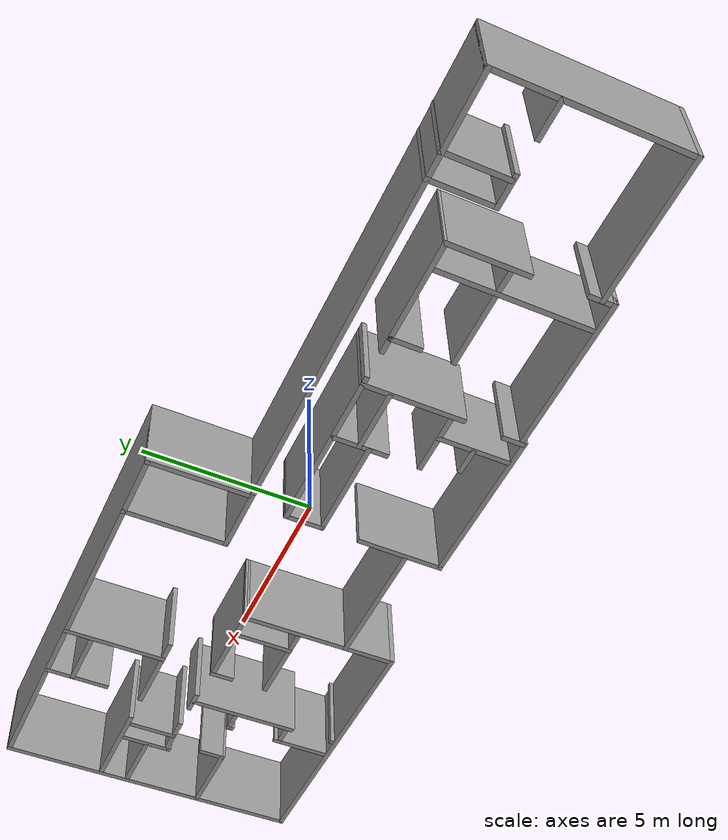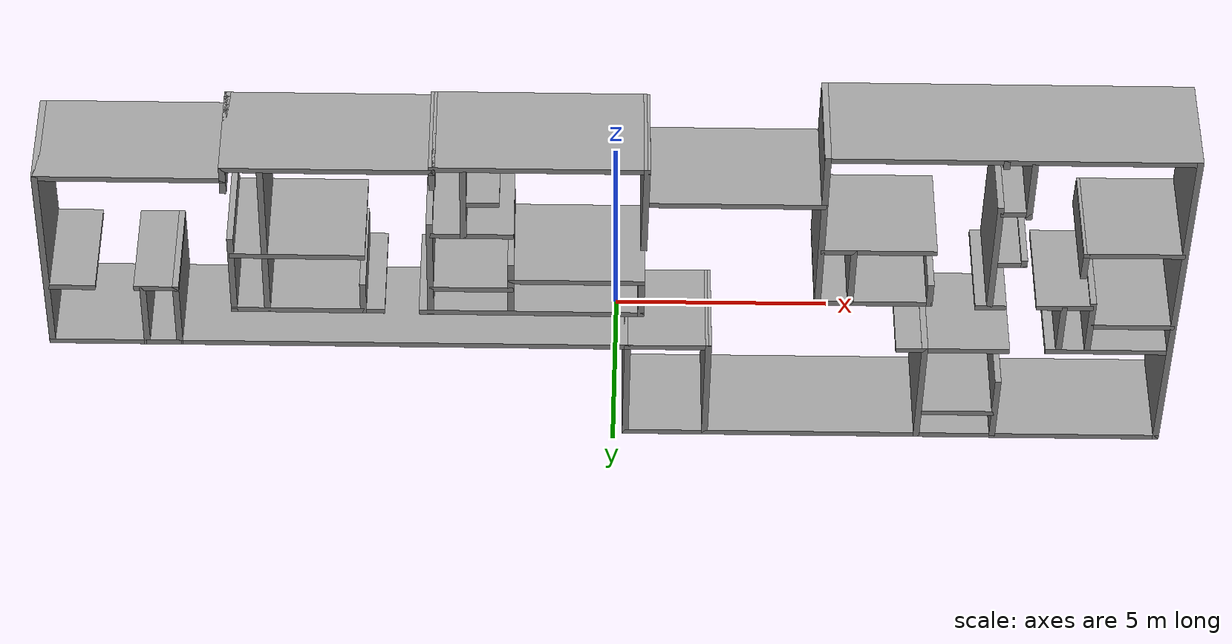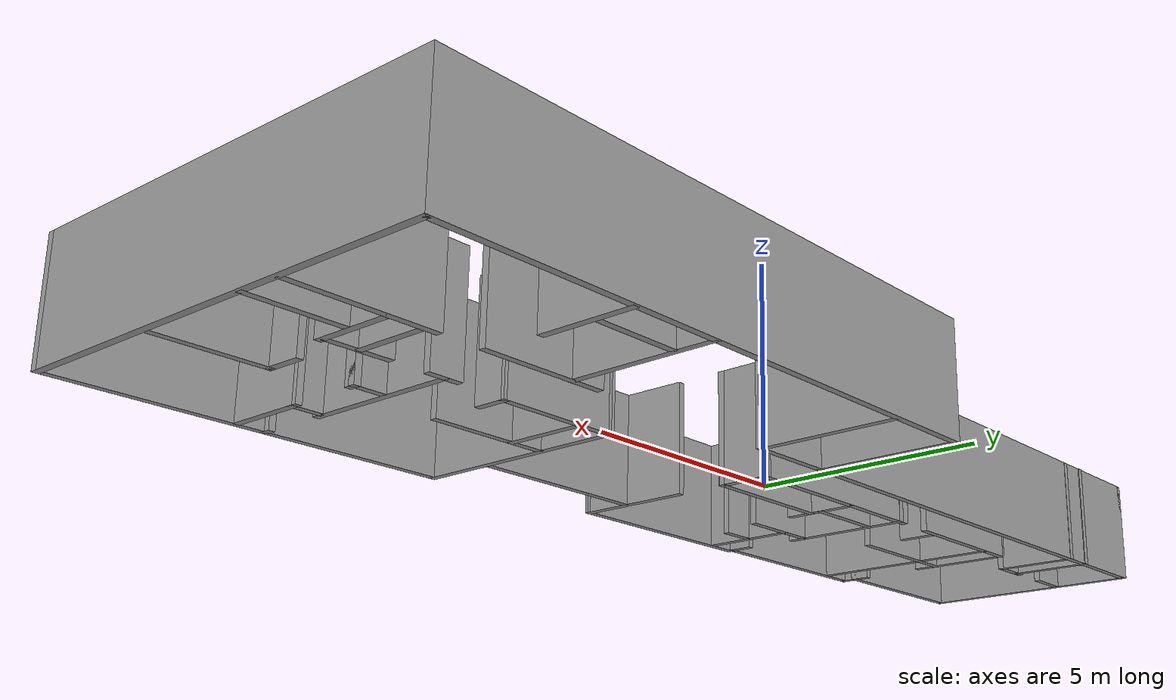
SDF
<?xml version='1.0'?>
<sdf version='1.7'>
  <model name='StandardApartment-2'>
    <pose>-0.075 -0.06 0 0 -0 0</pose>
    <link name='Wall_1'>
      <collision name='Wall_1_Collision'>
        <geometry>
          <box>
            <size>5.75 0.15 2.5</size>
          </box>
        </geometry>
        <pose>0 0 1.25 0 -0 0</pose>
      </collision>
      <visual name='Wall_1_Visual'>
        <pose>0 0 1.25 0 -0 0</pose>
        <geometry>
          <box>
            <size>5.75 0.15 2.5</size>
          </box>
        </geometry>
        <material>
          <script>
            <uri>file://media/materials/scripts/gazebo.material</uri>
            <name>Gazebo/Grey</name>
          </script>
          <ambient>1 1 1 1</ambient>
        </material>
        <meta>
          <layer>0</layer>
        </meta>
      </visual>
      <pose>-13.475 -1.1 0 0 -0 1.5708</pose>
    </link>
    <link name='Wall_102'>
      <collision name='Wall_102_Collision'>
        <geometry>
          <box>
            <size>3.5 0.15 2.5</size>
          </box>
        </geometry>
        <pose>0 0 1.25 0 -0 0</pose>
      </collision>
      <visual name='Wall_102_Visual'>
        <pose>0 0 1.25 0 -0 0</pose>
        <geometry>
          <box>
            <size>3.5 0.15 2.5</size>
          </box>
        </geometry>
        <material>
          <script>
            <uri>file://media/materials/scripts/gazebo.material</uri>
            <name>Gazebo/Grey</name>
          </script>
          <ambient>1 1 1 1</ambient>
        </material>
        <meta>
          <layer>0</layer>
        </meta>
      </visual>
      <pose>8.99118 -1.55956 0 0 -0 -1.5708</pose>
    </link>
    <link name='Wall_105'>
      <collision name='Wall_105_Collision'>
        <geometry>
          <box>
            <size>0.75 0.15 2.5</size>
          </box>
        </geometry>
        <pose>0 0 1.25 0 -0 0</pose>
      </collision>
      <visual name='Wall_105_Visual'>
        <pose>0 0 1.25 0 -0 0</pose>
        <geometry>
          <box>
            <size>0.75 0.15 2.5</size>
          </box>
        </geometry>
        <material>
          <script>
            <uri>file://media/materials/scripts/gazebo.material</uri>
            <name>Gazebo/Grey</name>
          </script>
          <ambient>1 1 1 1</ambient>
        </material>
        <meta>
          <layer>0</layer>
        </meta>
      </visual>
      <pose>9.36944 -3.08456 0 0 -0 0</pose>
    </link>
    <link name='Wall_106'>
      <collision name='Wall_106_Collision'>
        <geometry>
          <box>
            <size>1.75 0.15 2.5</size>
          </box>
        </geometry>
        <pose>0 0 1.25 0 -0 0</pose>
      </collision>
      <visual name='Wall_106_Visual'>
        <pose>0 0 1.25 0 -0 0</pose>
        <geometry>
          <box>
            <size>1.75 0.15 2.5</size>
          </box>
        </geometry>
        <material>
          <script>
            <uri>file://media/materials/scripts/gazebo.material</uri>
            <name>Gazebo/Grey</name>
          </script>
          <ambient>1 1 1 1</ambient>
        </material>
        <meta>
          <layer>0</layer>
        </meta>
      </visual>
      <pose>9.66944 -3.88456 0 0 -0 -1.5708</pose>
    </link>
    <link name='Wall_108'>
      <collision name='Wall_108_Collision'>
        <geometry>
          <box>
            <size>0.75 0.15 2.5</size>
          </box>
        </geometry>
        <pose>0 0 1.25 0 -0 0</pose>
      </collision>
      <visual name='Wall_108_Visual'>
        <pose>0 0 1.25 0 -0 0</pose>
        <geometry>
          <box>
            <size>0.75 0.15 2.5</size>
          </box>
        </geometry>
        <material>
          <script>
            <uri>file://media/materials/scripts/gazebo.material</uri>
            <name>Gazebo/Grey</name>
          </script>
          <ambient>1 1 1 1</ambient>
        </material>
        <meta>
          <layer>0</layer>
        </meta>
      </visual>
      <pose>9.39553 -1.34543 0 0 -0 0</pose>
    </link>
    <link name='Wall_109'>
      <collision name='Wall_109_Collision'>
        <geometry>
          <box>
            <size>0.25 0.15 2.5</size>
          </box>
        </geometry>
        <pose>0 0 1.25 0 -0 0</pose>
      </collision>
      <visual name='Wall_109_Visual'>
        <pose>0 0 1.25 0 -0 0</pose>
        <geometry>
          <box>
            <size>0.25 0.15 2.5</size>
          </box>
        </geometry>
        <material>
          <script>
            <uri>file://media/materials/scripts/gazebo.material</uri>
            <name>Gazebo/Grey</name>
          </script>
          <ambient>1 1 1 1</ambient>
        </material>
        <meta>
          <layer>0</layer>
        </meta>
      </visual>
      <pose>9.69553 -1.39542 0 0 -0 -1.5708</pose>
    </link>
    <link name='Wall_11'>
      <collision name='Wall_11_Collision'>
        <geometry>
          <box>
            <size>1.75 0.15 2.5</size>
          </box>
        </geometry>
        <pose>0 0 1.25 0 -0 0</pose>
      </collision>
      <visual name='Wall_11_Visual'>
        <pose>0 0 1.25 0 -0 0</pose>
        <geometry>
          <box>
            <size>1.75 0.15 2.5</size>
          </box>
        </geometry>
        <material>
          <script>
            <uri>file://media/materials/scripts/gazebo.material</uri>
            <name>Gazebo/Grey</name>
          </script>
          <ambient>1 1 1 1</ambient>
        </material>
        <meta>
          <layer>0</layer>
        </meta>
      </visual>
      <pose>11.475 0.85 0 0 -0 1.5708</pose>
    </link>
    <link name='Wall_111'>
      <collision name='Wall_111_Collision'>
        <geometry>
          <box>
            <size>0.25 0.15 2.5</size>
          </box>
        </geometry>
        <pose>0 0 1.25 0 -0 0</pose>
      </collision>
      <visual name='Wall_111_Visual'>
        <pose>0 0 1.25 0 -0 0</pose>
        <geometry>
          <box>
            <size>0.25 0.15 2.5</size>
          </box>
        </geometry>
        <material>
          <script>
            <uri>file://media/materials/scripts/gazebo.material</uri>
            <name>Gazebo/Grey</name>
          </script>
          <ambient>1 1 1 1</ambient>
        </material>
        <meta>
          <layer>0</layer>
        </meta>
      </visual>
      <pose>9.66944 -3.03456 0 0 -0 1.5708</pose>
    </link>
    <link name='Wall_113'>
      <collision name='Wall_113_Collision'>
        <geometry>
          <box>
            <size>2.40219 0.15 2.5</size>
          </box>
        </geometry>
        <pose>0 0 1.25 0 -0 0</pose>
      </collision>
      <visual name='Wall_113_Visual'>
        <pose>0 0 1.25 0 -0 0</pose>
        <geometry>
          <box>
            <size>2.40219 0.15 2.5</size>
          </box>
        </geometry>
        <material>
          <script>
            <uri>file://media/materials/scripts/gazebo.material</uri>
            <name>Gazebo/Grey</name>
          </script>
          <ambient>1 1 1 1</ambient>
        </material>
        <meta>
          <layer>0</layer>
        </meta>
      </visual>
      <pose>12.2738 -1.70629 0 0 -0 3.13773</pose>
    </link>
    <link name='Wall_114'>
      <collision name='Wall_114_Collision'>
        <geometry>
          <box>
            <size>0.863096 0.15 2.5</size>
          </box>
        </geometry>
        <pose>0 0 1.25 0 -0 0</pose>
      </collision>
      <visual name='Wall_114_Visual'>
        <pose>0 0 1.25 0 -0 0</pose>
        <geometry>
          <box>
            <size>0.863096 0.15 2.5</size>
          </box>
        </geometry>
        <material>
          <script>
            <uri>file://media/materials/scripts/gazebo.material</uri>
            <name>Gazebo/Grey</name>
          </script>
          <ambient>1 1 1 1</ambient>
        </material>
        <meta>
          <layer>0</layer>
        </meta>
      </visual>
      <pose>11.1434 -1.34543 0 0 -0 1.58299</pose>
    </link>
    <link name='Wall_116'>
      <collision name='Wall_116_Collision'>
        <geometry>
          <box>
            <size>4.23696 0.15 2.5</size>
          </box>
        </geometry>
        <pose>0 0 1.25 0 -0 0</pose>
      </collision>
      <visual name='Wall_116_Visual'>
        <pose>0 0 1.25 0 -0 0</pose>
        <geometry>
          <box>
            <size>4.23696 0.15 2.5</size>
          </box>
        </geometry>
        <material>
          <script>
            <uri>file://media/materials/scripts/gazebo.material</uri>
            <name>Gazebo/Grey</name>
          </script>
          <ambient>1 1 1 1</ambient>
        </material>
        <meta>
          <layer>0</layer>
        </meta>
      </visual>
      <pose>2.82596 -3.24977 0 0 -0 0</pose>
    </link>
    <link name='Wall_13'>
      <collision name='Wall_13_Collision'>
        <geometry>
          <box>
            <size>4.5 0.15 2.5</size>
          </box>
        </geometry>
        <pose>0 0 1.25 0 -0 0</pose>
      </collision>
      <visual name='Wall_13_Visual'>
        <pose>0 0 1.25 0 -0 0</pose>
        <geometry>
          <box>
            <size>4.5 0.15 2.5</size>
          </box>
        </geometry>
        <material>
          <script>
            <uri>file://media/materials/scripts/gazebo.material</uri>
            <name>Gazebo/Grey</name>
          </script>
          <ambient>1 1 1 1</ambient>
        </material>
        <meta>
          <layer>0</layer>
        </meta>
      </visual>
      <pose>-11.3 -3.9 0 0 -0 0</pose>
    </link>
    <link name='Wall_14'>
      <collision name='Wall_14_Collision'>
        <geometry>
          <box>
            <size>0.5 0.15 2.5</size>
          </box>
        </geometry>
        <pose>0 0 1.25 0 -0 0</pose>
      </collision>
      <visual name='Wall_14_Visual'>
        <pose>0 0 1.25 0 -0 0</pose>
        <geometry>
          <box>
            <size>0.5 0.15 2.5</size>
          </box>
        </geometry>
        <material>
          <script>
            <uri>file://media/materials/scripts/gazebo.material</uri>
            <name>Gazebo/Grey</name>
          </script>
          <ambient>1 1 1 1</ambient>
        </material>
        <meta>
          <layer>0</layer>
        </meta>
      </visual>
      <pose>-9.125 -4.075 0 0 -0 -1.5708</pose>
    </link>
    <link name='Wall_15'>
      <collision name='Wall_15_Collision'>
        <geometry>
          <box>
            <size>5 0.15 2.5</size>
          </box>
        </geometry>
        <pose>0 0 1.25 0 -0 0</pose>
      </collision>
      <visual name='Wall_15_Visual'>
        <pose>0 0 1.25 0 -0 0</pose>
        <geometry>
          <box>
            <size>5 0.15 2.5</size>
          </box>
        </geometry>
        <material>
          <script>
            <uri>file://media/materials/scripts/gazebo.material</uri>
            <name>Gazebo/Grey</name>
          </script>
          <ambient>1 1 1 1</ambient>
        </material>
        <meta>
          <layer>0</layer>
        </meta>
      </visual>
      <pose>-6.7 -4.25 0 0 -0 0</pose>
    </link>
    <link name='Wall_16'>
      <collision name='Wall_16_Collision'>
        <geometry>
          <box>
            <size>0.25 0.15 2.5</size>
          </box>
        </geometry>
        <pose>0 0 1.25 0 -0 0</pose>
      </collision>
      <visual name='Wall_16_Visual'>
        <pose>0 0 1.25 0 -0 0</pose>
        <geometry>
          <box>
            <size>0.25 0.15 2.5</size>
          </box>
        </geometry>
        <material>
          <script>
            <uri>file://media/materials/scripts/gazebo.material</uri>
            <name>Gazebo/Grey</name>
          </script>
          <ambient>1 1 1 1</ambient>
        </material>
        <meta>
          <layer>0</layer>
        </meta>
      </visual>
      <pose>-4.275 -4.3 0 0 -0 -1.5708</pose>
    </link>
    <link name='Wall_17'>
      <collision name='Wall_17_Collision'>
        <geometry>
          <box>
            <size>5.1405 0.15 2.5</size>
          </box>
        </geometry>
        <pose>0 0 1.25 0 -0 0</pose>
      </collision>
      <visual name='Wall_17_Visual'>
        <pose>0 0 1.25 0 -0 0</pose>
        <geometry>
          <box>
            <size>5.1405 0.15 2.5</size>
          </box>
        </geometry>
        <material>
          <script>
            <uri>file://media/materials/scripts/gazebo.material</uri>
            <name>Gazebo/Grey</name>
          </script>
          <ambient>1 1 1 1</ambient>
        </material>
        <meta>
          <layer>0</layer>
        </meta>
      </visual>
      <pose>-1.77975 -4.34675 0 0 -0 0.001302</pose>
    </link>
    <link name='Wall_18'>
      <collision name='Wall_18_Collision'>
        <geometry>
          <box>
            <size>2.71473 0.15 2.5</size>
          </box>
        </geometry>
        <pose>0 0 1.25 0 -0 0</pose>
      </collision>
      <visual name='Wall_18_Visual'>
        <pose>0 0 1.25 0 -0 0</pose>
        <geometry>
          <box>
            <size>2.71473 0.15 2.5</size>
          </box>
        </geometry>
        <material>
          <script>
            <uri>file://media/materials/scripts/gazebo.material</uri>
            <name>Gazebo/Grey</name>
          </script>
          <ambient>1 1 1 1</ambient>
        </material>
        <meta>
          <layer>0</layer>
        </meta>
      </visual>
      <pose>0.704 -3.06125 0 0 -0 1.57977</pose>
    </link>
    <link name='Wall_2'>
      <collision name='Wall_2_Collision'>
        <geometry>
          <box>
            <size>14 0.15 2.5</size>
          </box>
        </geometry>
        <pose>0 0 1.25 0 -0 0</pose>
      </collision>
      <visual name='Wall_2_Visual'>
        <pose>0 0 1.25 0 -0 0</pose>
        <geometry>
          <box>
            <size>14 0.15 2.5</size>
          </box>
        </geometry>
        <material>
          <script>
            <uri>file://media/materials/scripts/gazebo.material</uri>
            <name>Gazebo/Grey</name>
          </script>
          <ambient>1 1 1 1</ambient>
        </material>
        <meta>
          <layer>0</layer>
        </meta>
      </visual>
      <pose>-6.55 1.7 0 0 -0 0</pose>
    </link>
    <link name='Wall_20'>
      <collision name='Wall_20_Collision'>
        <geometry>
          <box>
            <size>5.38251 0.15 2.5</size>
          </box>
        </geometry>
        <pose>0 0 1.25 0 -0 0</pose>
      </collision>
      <visual name='Wall_20_Visual'>
        <pose>0 0 1.25 0 -0 0</pose>
        <geometry>
          <box>
            <size>5.38251 0.15 2.5</size>
          </box>
        </geometry>
        <material>
          <script>
            <uri>file://media/materials/scripts/gazebo.material</uri>
            <name>Gazebo/Grey</name>
          </script>
          <ambient>1 1 1 1</ambient>
        </material>
        <meta>
          <layer>0</layer>
        </meta>
      </visual>
      <pose>-1.94675 0.52675 0 0 -0 0.002198</pose>
    </link>
    <link name='Wall_23'>
      <collision name='Wall_23_Collision'>
        <geometry>
          <box>
            <size>3.66907 0.15 2.5</size>
          </box>
        </geometry>
        <pose>0 0 1.25 0 -0 0</pose>
      </collision>
      <visual name='Wall_23_Visual'>
        <pose>0 0 1.25 0 -0 0</pose>
        <geometry>
          <box>
            <size>3.66907 0.15 2.5</size>
          </box>
        </geometry>
        <material>
          <script>
            <uri>file://media/materials/scripts/gazebo.material</uri>
            <name>Gazebo/Grey</name>
          </script>
          <ambient>1 1 1 1</ambient>
        </material>
        <meta>
          <layer>0</layer>
        </meta>
      </visual>
      <pose>-7.2885 0.50375 0 0 -0 -3.13833</pose>
    </link>
    <link name='Wall_24'>
      <collision name='Wall_24_Collision'>
        <geometry>
          <box>
            <size>2.5 0.15 2.5</size>
          </box>
        </geometry>
        <pose>0 0 1.25 0 -0 0</pose>
      </collision>
      <visual name='Wall_24_Visual'>
        <pose>0 0 1.25 0 -0 0</pose>
        <geometry>
          <box>
            <size>2.5 0.15 2.5</size>
          </box>
        </geometry>
        <material>
          <script>
            <uri>file://media/materials/scripts/gazebo.material</uri>
            <name>Gazebo/Grey</name>
          </script>
          <ambient>1 1 1 1</ambient>
        </material>
        <meta>
          <layer>0</layer>
        </meta>
      </visual>
      <pose>-9.048 -0.677 0 0 -0 -1.5708</pose>
    </link>
    <link name='Wall_26'>
      <collision name='Wall_26_Collision'>
        <geometry>
          <box>
            <size>0.5 0.15 2.5</size>
          </box>
        </geometry>
        <pose>0 0 1.25 0 -0 0</pose>
      </collision>
      <visual name='Wall_26_Visual'>
        <pose>0 0 1.25 0 -0 0</pose>
        <geometry>
          <box>
            <size>0.5 0.15 2.5</size>
          </box>
        </geometry>
        <material>
          <script>
            <uri>file://media/materials/scripts/gazebo.material</uri>
            <name>Gazebo/Grey</name>
          </script>
          <ambient>1 1 1 1</ambient>
        </material>
        <meta>
          <layer>0</layer>
        </meta>
      </visual>
      <pose>-9.125 -3.725 0 0 -0 1.5708</pose>
    </link>
    <link name='Wall_28'>
      <collision name='Wall_28_Collision'>
        <geometry>
          <box>
            <size>1.20806 0.15 2.5</size>
          </box>
        </geometry>
        <pose>0 0 1.25 0 -0 0</pose>
      </collision>
      <visual name='Wall_28_Visual'>
        <pose>0 0 1.25 0 -0 0</pose>
        <geometry>
          <box>
            <size>1.20806 0.15 2.5</size>
          </box>
        </geometry>
        <material>
          <script>
            <uri>file://media/materials/scripts/gazebo.material</uri>
            <name>Gazebo/Grey</name>
          </script>
          <ambient>1 1 1 1</ambient>
        </material>
        <meta>
          <layer>0</layer>
        </meta>
      </visual>
      <pose>-12.9235 -0.20925 0 0 -0 0.010869</pose>
    </link>
    <link name='Wall_30'>
      <collision name='Wall_30_Collision'>
        <geometry>
          <box>
            <size>2.04753 0.15 2.5</size>
          </box>
        </geometry>
        <pose>0 0 1.25 0 -0 0</pose>
      </collision>
      <visual name='Wall_30_Visual'>
        <pose>0 0 1.25 0 -0 0</pose>
        <geometry>
          <box>
            <size>2.04753 0.15 2.5</size>
          </box>
        </geometry>
        <material>
          <script>
            <uri>file://media/materials/scripts/gazebo.material</uri>
            <name>Gazebo/Grey</name>
          </script>
          <ambient>1 1 1 1</ambient>
        </material>
        <meta>
          <layer>0</layer>
        </meta>
      </visual>
      <pose>-10.4165 0.75675 0 0 -0 -1.5708</pose>
    </link>
    <link name='Wall_31'>
      <collision name='Wall_31_Collision'>
        <geometry>
          <box>
            <size>1.07 0.15 2.5</size>
          </box>
        </geometry>
        <pose>0 0 1.25 0 -0 0</pose>
      </collision>
      <visual name='Wall_31_Visual'>
        <pose>0 0 1.25 0 -0 0</pose>
        <geometry>
          <box>
            <size>1.07 0.15 2.5</size>
          </box>
        </geometry>
        <material>
          <script>
            <uri>file://media/materials/scripts/gazebo.material</uri>
            <name>Gazebo/Grey</name>
          </script>
          <ambient>1 1 1 1</ambient>
        </material>
        <meta>
          <layer>0</layer>
        </meta>
      </visual>
      <pose>-10.8765 -0.192 0 0 -0 3.14159</pose>
    </link>
    <link name='Wall_33'>
      <collision name='Wall_33_Collision'>
        <geometry>
          <box>
            <size>2.0015 0.15 2.5</size>
          </box>
        </geometry>
        <pose>0 0 1.25 0 -0 0</pose>
      </collision>
      <visual name='Wall_33_Visual'>
        <pose>0 0 1.25 0 -0 0</pose>
        <geometry>
          <box>
            <size>2.0015 0.15 2.5</size>
          </box>
        </geometry>
        <material>
          <script>
            <uri>file://media/materials/scripts/gazebo.material</uri>
            <name>Gazebo/Grey</name>
          </script>
          <ambient>1 1 1 1</ambient>
        </material>
        <meta>
          <layer>0</layer>
        </meta>
      </visual>
      <pose>-11.1985 0.79125 0 0 -0 -1.5708</pose>
    </link>
    <link name='Wall_35'>
      <collision name='Wall_35_Collision'>
        <geometry>
          <box>
            <size>3.19759 0.15 2.5</size>
          </box>
        </geometry>
        <pose>0 0 1.25 0 -0 0</pose>
      </collision>
      <visual name='Wall_35_Visual'>
        <pose>0 0 1.25 0 -0 0</pose>
        <geometry>
          <box>
            <size>3.19759 0.15 2.5</size>
          </box>
        </geometry>
        <material>
          <script>
            <uri>file://media/materials/scripts/gazebo.material</uri>
            <name>Gazebo/Grey</name>
          </script>
          <ambient>1 1 1 1</ambient>
        </material>
        <meta>
          <layer>0</layer>
        </meta>
      </visual>
      <pose>-7.48975 -1.35925 0 0 -0 0.003774</pose>
    </link>
    <link name='Wall_39'>
      <collision name='Wall_39_Collision'>
        <geometry>
          <box>
            <size>1 0.15 2.5</size>
          </box>
        </geometry>
        <pose>0 0 1.25 0 -0 0</pose>
      </collision>
      <visual name='Wall_39_Visual'>
        <pose>0 0 1.25 0 -0 0</pose>
        <geometry>
          <box>
            <size>1 0.15 2.5</size>
          </box>
        </geometry>
        <material>
          <script>
            <uri>file://media/materials/scripts/gazebo.material</uri>
            <name>Gazebo/Grey</name>
          </script>
          <ambient>1 1 1 1</ambient>
        </material>
        <meta>
          <layer>0</layer>
        </meta>
      </visual>
      <pose>-5.966 0.073 0 0 -0 -1.5708</pose>
    </link>
    <link name='Wall_4'>
      <collision name='Wall_4_Collision'>
        <geometry>
          <box>
            <size>3.25 0.15 2.5</size>
          </box>
        </geometry>
        <pose>0 0 1.25 0 -0 0</pose>
      </collision>
      <visual name='Wall_4_Visual'>
        <pose>0 0 1.25 0 -0 0</pose>
        <geometry>
          <box>
            <size>3.25 0.15 2.5</size>
          </box>
        </geometry>
        <material>
          <script>
            <uri>file://media/materials/scripts/gazebo.material</uri>
            <name>Gazebo/Grey</name>
          </script>
          <ambient>1 1 1 1</ambient>
        </material>
        <meta>
          <layer>0</layer>
        </meta>
      </visual>
      <pose>0.375 3.25 0 0 -0 1.5708</pose>
    </link>
    <link name='Wall_41'>
      <collision name='Wall_41_Collision'>
        <geometry>
          <box>
            <size>4.75 0.15 2.5</size>
          </box>
        </geometry>
        <pose>0 0 1.25 0 -0 0</pose>
      </collision>
      <visual name='Wall_41_Visual'>
        <pose>0 0 1.25 0 -0 0</pose>
        <geometry>
          <box>
            <size>4.75 0.15 2.5</size>
          </box>
        </geometry>
        <material>
          <script>
            <uri>file://media/materials/scripts/gazebo.material</uri>
            <name>Gazebo/Grey</name>
          </script>
          <ambient>1 1 1 1</ambient>
        </material>
        <meta>
          <layer>0</layer>
        </meta>
      </visual>
      <pose>-8.2545 -1.8135 0 0 -0 -1.5708</pose>
    </link>
    <link name='Wall_46'>
      <collision name='Wall_46_Collision'>
        <geometry>
          <box>
            <size>3.12393 0.15 2.5</size>
          </box>
        </geometry>
        <pose>0 0 1.25 0 -0 0</pose>
      </collision>
      <visual name='Wall_46_Visual'>
        <pose>0 0 1.25 0 -0 0</pose>
        <geometry>
          <box>
            <size>3.12393 0.15 2.5</size>
          </box>
        </geometry>
        <material>
          <script>
            <uri>file://media/materials/scripts/gazebo.material</uri>
            <name>Gazebo/Grey</name>
          </script>
          <ambient>1 1 1 1</ambient>
        </material>
        <meta>
          <layer>0</layer>
        </meta>
      </visual>
      <pose>-4.35664 -0.962817 0 0 -0 -1.5708</pose>
    </link>
    <link name='Wall_48'>
      <collision name='Wall_48_Collision'>
        <geometry>
          <box>
            <size>0.75 0.15 2.5</size>
          </box>
        </geometry>
        <pose>0 0 1.25 0 -0 0</pose>
      </collision>
      <visual name='Wall_48_Visual'>
        <pose>0 0 1.25 0 -0 0</pose>
        <geometry>
          <box>
            <size>0.75 0.15 2.5</size>
          </box>
        </geometry>
        <material>
          <script>
            <uri>file://media/materials/scripts/gazebo.material</uri>
            <name>Gazebo/Grey</name>
          </script>
          <ambient>1 1 1 1</ambient>
        </material>
        <meta>
          <layer>0</layer>
        </meta>
      </visual>
      <pose>-4.275 -4.05 0 0 -0 1.5708</pose>
    </link>
    <link name='Wall_5'>
      <collision name='Wall_5_Collision'>
        <geometry>
          <box>
            <size>13.25 0.15 2.5</size>
          </box>
        </geometry>
        <pose>0 0 1.25 0 -0 0</pose>
      </collision>
      <visual name='Wall_5_Visual'>
        <pose>0 0 1.25 0 -0 0</pose>
        <geometry>
          <box>
            <size>13.25 0.15 2.5</size>
          </box>
        </geometry>
        <material>
          <script>
            <uri>file://media/materials/scripts/gazebo.material</uri>
            <name>Gazebo/Grey</name>
          </script>
          <ambient>1 1 1 1</ambient>
        </material>
        <meta>
          <layer>0</layer>
        </meta>
      </visual>
      <pose>6.925 4.8 0 0 -0 0</pose>
    </link>
    <link name='Wall_50'>
      <collision name='Wall_50_Collision'>
        <geometry>
          <box>
            <size>2 0.15 2.5</size>
          </box>
        </geometry>
        <pose>0 0 1.25 0 -0 0</pose>
      </collision>
      <visual name='Wall_50_Visual'>
        <pose>0 0 1.25 0 -0 0</pose>
        <geometry>
          <box>
            <size>2 0.15 2.5</size>
          </box>
        </geometry>
        <material>
          <script>
            <uri>file://media/materials/scripts/gazebo.material</uri>
            <name>Gazebo/Grey</name>
          </script>
          <ambient>1 1 1 1</ambient>
        </material>
        <meta>
          <layer>0</layer>
        </meta>
      </visual>
      <pose>-3.37078 -2.12803 0 0 -0 0</pose>
    </link>
    <link name='Wall_52'>
      <collision name='Wall_52_Collision'>
        <geometry>
          <box>
            <size>2.25 0.15 2.5</size>
          </box>
        </geometry>
        <pose>0 0 1.25 0 -0 0</pose>
      </collision>
      <visual name='Wall_52_Visual'>
        <pose>0 0 1.25 0 -0 0</pose>
        <geometry>
          <box>
            <size>2.25 0.15 2.5</size>
          </box>
        </geometry>
        <material>
          <script>
            <uri>file://media/materials/scripts/gazebo.material</uri>
            <name>Gazebo/Grey</name>
          </script>
          <ambient>1 1 1 1</ambient>
        </material>
        <meta>
          <layer>0</layer>
        </meta>
      </visual>
      <pose>-3.55664 -3.17803 0 0 -0 -1.5708</pose>
    </link>
    <link name='Wall_54'>
      <collision name='Wall_54_Collision'>
        <geometry>
          <box>
            <size>1.75 0.15 2.5</size>
          </box>
        </geometry>
        <pose>0 0 1.25 0 -0 0</pose>
      </collision>
      <visual name='Wall_54_Visual'>
        <pose>0 0 1.25 0 -0 0</pose>
        <geometry>
          <box>
            <size>1.75 0.15 2.5</size>
          </box>
        </geometry>
        <material>
          <script>
            <uri>file://media/materials/scripts/gazebo.material</uri>
            <name>Gazebo/Grey</name>
          </script>
          <ambient>1 1 1 1</ambient>
        </material>
        <meta>
          <layer>0</layer>
        </meta>
      </visual>
      <pose>-2.4436 -0.284556 0 0 -0 -1.5708</pose>
    </link>
    <link name='Wall_56'>
      <collision name='Wall_56_Collision'>
        <geometry>
          <box>
            <size>2 0.15 2.5</size>
          </box>
        </geometry>
        <pose>0 0 1.25 0 -0 0</pose>
      </collision>
      <visual name='Wall_56_Visual'>
        <pose>0 0 1.25 0 -0 0</pose>
        <geometry>
          <box>
            <size>2 0.15 2.5</size>
          </box>
        </geometry>
        <material>
          <script>
            <uri>file://media/materials/scripts/gazebo.material</uri>
            <name>Gazebo/Grey</name>
          </script>
          <ambient>1 1 1 1</ambient>
        </material>
        <meta>
          <layer>0</layer>
        </meta>
      </visual>
      <pose>-3.37078 -0.284556 0 0 -0 0</pose>
    </link>
    <link name='Wall_58'>
      <collision name='Wall_58_Collision'>
        <geometry>
          <box>
            <size>0.863043 0.15 2.5</size>
          </box>
        </geometry>
        <pose>0 0 1.25 0 -0 0</pose>
      </collision>
      <visual name='Wall_58_Visual'>
        <pose>0 0 1.25 0 -0 0</pose>
        <geometry>
          <box>
            <size>0.863043 0.15 2.5</size>
          </box>
        </geometry>
        <material>
          <script>
            <uri>file://media/materials/scripts/gazebo.material</uri>
            <name>Gazebo/Grey</name>
          </script>
          <ambient>1 1 1 1</ambient>
        </material>
        <meta>
          <layer>0</layer>
        </meta>
      </visual>
      <pose>-3.13925 -3.1889 0 0 -0 0</pose>
    </link>
    <link name='Wall_61'>
      <collision name='Wall_61_Collision'>
        <geometry>
          <box>
            <size>1.25 0.15 2.5</size>
          </box>
        </geometry>
        <pose>0 0 1.25 0 -0 0</pose>
      </collision>
      <visual name='Wall_61_Visual'>
        <pose>0 0 1.25 0 -0 0</pose>
        <geometry>
          <box>
            <size>1.25 0.15 2.5</size>
          </box>
        </geometry>
        <material>
          <script>
            <uri>file://media/materials/scripts/gazebo.material</uri>
            <name>Gazebo/Grey</name>
          </script>
          <ambient>1 1 1 1</ambient>
        </material>
        <meta>
          <layer>0</layer>
        </meta>
      </visual>
      <pose>0.6695 -0.0175 0 0 -0 -1.5708</pose>
    </link>
    <link name='Wall_62'>
      <collision name='Wall_62_Collision'>
        <geometry>
          <box>
            <size>3.25 0.15 2.5</size>
          </box>
        </geometry>
        <pose>0 0 1.25 0 -0 0</pose>
      </collision>
      <visual name='Wall_62_Visual'>
        <pose>0 0 1.25 0 -0 0</pose>
        <geometry>
          <box>
            <size>3.25 0.15 2.5</size>
          </box>
        </geometry>
        <material>
          <script>
            <uri>file://media/materials/scripts/gazebo.material</uri>
            <name>Gazebo/Grey</name>
          </script>
          <ambient>1 1 1 1</ambient>
        </material>
        <meta>
          <layer>0</layer>
        </meta>
      </visual>
      <pose>-0.8805 -0.5675 0 0 -0 3.14159</pose>
    </link>
    <link name='Wall_67'>
      <collision name='Wall_67_Collision'>
        <geometry>
          <box>
            <size>3.25 0.15 2.5</size>
          </box>
        </geometry>
        <pose>0 0 1.25 0 -0 0</pose>
      </collision>
      <visual name='Wall_67_Visual'>
        <pose>0 0 1.25 0 -0 0</pose>
        <geometry>
          <box>
            <size>3.25 0.15 2.5</size>
          </box>
        </geometry>
        <material>
          <script>
            <uri>file://media/materials/scripts/gazebo.material</uri>
            <name>Gazebo/Grey</name>
          </script>
          <ambient>1 1 1 1</ambient>
        </material>
        <meta>
          <layer>0</layer>
        </meta>
      </visual>
      <pose>2.33031 3.2437 0 0 -0 -1.5708</pose>
    </link>
    <link name='Wall_68'>
      <collision name='Wall_68_Collision'>
        <geometry>
          <box>
            <size>2.10532 0.15 2.5</size>
          </box>
        </geometry>
        <pose>0 0 1.25 0 -0 0</pose>
      </collision>
      <visual name='Wall_68_Visual'>
        <pose>0 0 1.25 0 -0 0</pose>
        <geometry>
          <box>
            <size>2.10532 0.15 2.5</size>
          </box>
        </geometry>
        <material>
          <script>
            <uri>file://media/materials/scripts/gazebo.material</uri>
            <name>Gazebo/Grey</name>
          </script>
          <ambient>1 1 1 1</ambient>
        </material>
        <meta>
          <layer>0</layer>
        </meta>
      </visual>
      <pose>1.35266 1.69685 0 0 -0 3.13837</pose>
    </link>
    <link name='Wall_7'>
      <collision name='Wall_7_Collision'>
        <geometry>
          <box>
            <size>9.75 0.15 2.5</size>
          </box>
        </geometry>
        <pose>0 0 1.25 0 -0 0</pose>
      </collision>
      <visual name='Wall_7_Visual'>
        <pose>0 0 1.25 0 -0 0</pose>
        <geometry>
          <box>
            <size>9.75 0.15 2.5</size>
          </box>
        </geometry>
        <material>
          <script>
            <uri>file://media/materials/scripts/gazebo.material</uri>
            <name>Gazebo/Grey</name>
          </script>
          <ambient>1 1 1 1</ambient>
        </material>
        <meta>
          <layer>0</layer>
        </meta>
      </visual>
      <pose>13.475 -0 0 0 -0 -1.5708</pose>
    </link>
    <link name='Wall_70'>
      <collision name='Wall_70_Collision'>
        <geometry>
          <box>
            <size>3.25 0.15 2.5</size>
          </box>
        </geometry>
        <pose>0 0 1.25 0 -0 0</pose>
      </collision>
      <visual name='Wall_70_Visual'>
        <pose>0 0 1.25 0 -0 0</pose>
        <geometry>
          <box>
            <size>3.25 0.15 2.5</size>
          </box>
        </geometry>
        <material>
          <script>
            <uri>file://media/materials/scripts/gazebo.material</uri>
            <name>Gazebo/Grey</name>
          </script>
          <ambient>1 1 1 1</ambient>
        </material>
        <meta>
          <layer>0</layer>
        </meta>
      </visual>
      <pose>7.5564 3.2437 0 0 -0 -1.5708</pose>
    </link>
    <link name='Wall_72'>
      <collision name='Wall_72_Collision'>
        <geometry>
          <box>
            <size>2.75 0.15 2.5</size>
          </box>
        </geometry>
        <pose>0 0 1.25 0 -0 0</pose>
      </collision>
      <visual name='Wall_72_Visual'>
        <pose>0 0 1.25 0 -0 0</pose>
        <geometry>
          <box>
            <size>2.75 0.15 2.5</size>
          </box>
        </geometry>
        <material>
          <script>
            <uri>file://media/materials/scripts/gazebo.material</uri>
            <name>Gazebo/Grey</name>
          </script>
          <ambient>1 1 1 1</ambient>
        </material>
        <meta>
          <layer>0</layer>
        </meta>
      </visual>
      <pose>8.23031 1.69805 0 0 -0 0</pose>
    </link>
    <link name='Wall_74'>
      <collision name='Wall_74_Collision'>
        <geometry>
          <box>
            <size>2 0.15 2.5</size>
          </box>
        </geometry>
        <pose>0 0 1.25 0 -0 0</pose>
      </collision>
      <visual name='Wall_74_Visual'>
        <pose>0 0 1.25 0 -0 0</pose>
        <geometry>
          <box>
            <size>2 0.15 2.5</size>
          </box>
        </geometry>
        <material>
          <script>
            <uri>file://media/materials/scripts/gazebo.material</uri>
            <name>Gazebo/Grey</name>
          </script>
          <ambient>1 1 1 1</ambient>
        </material>
        <meta>
          <layer>0</layer>
        </meta>
      </visual>
      <pose>9.42596 3.81653 0 0 -0 -1.5708</pose>
    </link>
    <link name='Wall_76'>
      <collision name='Wall_76_Collision'>
        <geometry>
          <box>
            <size>1.88046 0.15 2.5</size>
          </box>
        </geometry>
        <pose>0 0 1.25 0 -0 0</pose>
      </collision>
      <visual name='Wall_76_Visual'>
        <pose>0 0 1.25 0 -0 0</pose>
        <geometry>
          <box>
            <size>1.88046 0.15 2.5</size>
          </box>
        </geometry>
        <material>
          <script>
            <uri>file://media/materials/scripts/gazebo.material</uri>
            <name>Gazebo/Grey</name>
          </script>
          <ambient>1 1 1 1</ambient>
        </material>
        <meta>
          <layer>0</layer>
        </meta>
      </visual>
      <pose>8.51727 3.97631 0 0 -0 0</pose>
    </link>
    <link name='Wall_78'>
      <collision name='Wall_78_Collision'>
        <geometry>
          <box>
            <size>3 0.15 2.5</size>
          </box>
        </geometry>
        <pose>0 0 1.25 0 -0 0</pose>
      </collision>
      <visual name='Wall_78_Visual'>
        <pose>0 0 1.25 0 -0 0</pose>
        <geometry>
          <box>
            <size>3 0.15 2.5</size>
          </box>
        </geometry>
        <material>
          <script>
            <uri>file://media/materials/scripts/gazebo.material</uri>
            <name>Gazebo/Grey</name>
          </script>
          <ambient>1 1 1 1</ambient>
        </material>
        <meta>
          <layer>0</layer>
        </meta>
      </visual>
      <pose>11.964 1.68066 0 0 -0 0</pose>
    </link>
    <link name='Wall_8'>
      <collision name='Wall_8_Collision'>
        <geometry>
          <box>
            <size>8.75 0.15 2.5</size>
          </box>
        </geometry>
        <pose>0 0 1.25 0 -0 0</pose>
      </collision>
      <visual name='Wall_8_Visual'>
        <pose>0 0 1.25 0 -0 0</pose>
        <geometry>
          <box>
            <size>8.75 0.15 2.5</size>
          </box>
        </geometry>
        <material>
          <script>
            <uri>file://media/materials/scripts/gazebo.material</uri>
            <name>Gazebo/Grey</name>
          </script>
          <ambient>1 1 1 1</ambient>
        </material>
        <meta>
          <layer>0</layer>
        </meta>
      </visual>
      <pose>9.175 -4.8 0 0 -0 3.14159</pose>
    </link>
    <link name='Wall_80'>
      <collision name='Wall_80_Collision'>
        <geometry>
          <box>
            <size>2 0.15 2.5</size>
          </box>
        </geometry>
        <pose>0 0 1.25 0 -0 0</pose>
      </collision>
      <visual name='Wall_80_Visual'>
        <pose>0 0 1.25 0 -0 0</pose>
        <geometry>
          <box>
            <size>2 0.15 2.5</size>
          </box>
        </geometry>
        <material>
          <script>
            <uri>file://media/materials/scripts/gazebo.material</uri>
            <name>Gazebo/Grey</name>
          </script>
          <ambient>1 1 1 1</ambient>
        </material>
        <meta>
          <layer>0</layer>
        </meta>
      </visual>
      <pose>12.4901 0.785009 0 0 -0 0</pose>
    </link>
    <link name='Wall_82'>
      <collision name='Wall_82_Collision'>
        <geometry>
          <box>
            <size>2.82271 0.15 2.5</size>
          </box>
        </geometry>
        <pose>0 0 1.25 0 -0 0</pose>
      </collision>
      <visual name='Wall_82_Visual'>
        <pose>0 0 1.25 0 -0 0</pose>
        <geometry>
          <box>
            <size>2.82271 0.15 2.5</size>
          </box>
        </geometry>
        <material>
          <script>
            <uri>file://media/materials/scripts/gazebo.material</uri>
            <name>Gazebo/Grey</name>
          </script>
          <ambient>1 1 1 1</ambient>
        </material>
        <meta>
          <layer>0</layer>
        </meta>
      </visual>
      <pose>6.21135 0.047939 0 0 -0 -0.001542</pose>
    </link>
    <link name='Wall_83'>
      <collision name='Wall_83_Collision'>
        <geometry>
          <box>
            <size>0.75 0.15 2.5</size>
          </box>
        </geometry>
        <pose>0 0 1.25 0 -0 0</pose>
      </collision>
      <visual name='Wall_83_Visual'>
        <pose>0 0 1.25 0 -0 0</pose>
        <geometry>
          <box>
            <size>0.75 0.15 2.5</size>
          </box>
        </geometry>
        <material>
          <script>
            <uri>file://media/materials/scripts/gazebo.material</uri>
            <name>Gazebo/Grey</name>
          </script>
          <ambient>1 1 1 1</ambient>
        </material>
        <meta>
          <layer>0</layer>
        </meta>
      </visual>
      <pose>7.5477 -0.254121 0 0 -0 -1.5708</pose>
    </link>
    <link name='Wall_85'>
      <collision name='Wall_85_Collision'>
        <geometry>
          <box>
            <size>2.75 0.15 2.5</size>
          </box>
        </geometry>
        <pose>0 0 1.25 0 -0 0</pose>
      </collision>
      <visual name='Wall_85_Visual'>
        <pose>0 0 1.25 0 -0 0</pose>
        <geometry>
          <box>
            <size>2.75 0.15 2.5</size>
          </box>
        </geometry>
        <material>
          <script>
            <uri>file://media/materials/scripts/gazebo.material</uri>
            <name>Gazebo/Grey</name>
          </script>
          <ambient>1 1 1 1</ambient>
        </material>
        <meta>
          <layer>0</layer>
        </meta>
      </visual>
      <pose>6.23901 -1.71934 0 0 -0 0</pose>
    </link>
    <link name='Wall_87'>
      <collision name='Wall_87_Collision'>
        <geometry>
          <box>
            <size>1.90652 0.15 2.5</size>
          </box>
        </geometry>
        <pose>0 0 1.25 0 -0 0</pose>
      </collision>
      <visual name='Wall_87_Visual'>
        <pose>0 0 1.25 0 -0 0</pose>
        <geometry>
          <box>
            <size>1.90652 0.15 2.5</size>
          </box>
        </geometry>
        <material>
          <script>
            <uri>file://media/materials/scripts/gazebo.material</uri>
            <name>Gazebo/Grey</name>
          </script>
          <ambient>1 1 1 1</ambient>
        </material>
        <meta>
          <layer>0</layer>
        </meta>
      </visual>
      <pose>5.65205 -0.832382 0 0 -0 -1.5708</pose>
    </link>
    <link name='Wall_89'>
      <collision name='Wall_89_Collision'>
        <geometry>
          <box>
            <size>0.15 0.15 2.5</size>
          </box>
        </geometry>
        <pose>0 0 1.25 0 -0 0</pose>
      </collision>
      <visual name='Wall_89_Visual'>
        <pose>0 0 1.25 0 -0 0</pose>
        <geometry>
          <box>
            <size>0.15 0.15 2.5</size>
          </box>
        </geometry>
        <material>
          <script>
            <uri>file://media/materials/scripts/gazebo.material</uri>
            <name>Gazebo/Grey</name>
          </script>
          <ambient>1 1 1 1</ambient>
        </material>
        <meta>
          <layer>0</layer>
        </meta>
      </visual>
      <pose>5.65205 0.045879 0 0 -0 0</pose>
    </link>
    <link name='Wall_9'>
      <collision name='Wall_9_Collision'>
        <geometry>
          <box>
            <size>5 0.15 2.5</size>
          </box>
        </geometry>
        <pose>0 0 1.25 0 -0 0</pose>
      </collision>
      <visual name='Wall_9_Visual'>
        <pose>0 0 1.25 0 -0 0</pose>
        <geometry>
          <box>
            <size>5 0.15 2.5</size>
          </box>
        </geometry>
        <material>
          <script>
            <uri>file://media/materials/scripts/gazebo.material</uri>
            <name>Gazebo/Grey</name>
          </script>
          <ambient>1 1 1 1</ambient>
        </material>
        <meta>
          <layer>0</layer>
        </meta>
      </visual>
      <pose>4.875 -2.375 0 0 -0 1.5708</pose>
    </link>
    <link name='Wall_93'>
      <collision name='Wall_93_Collision'>
        <geometry>
          <box>
            <size>0.25 0.15 2.5</size>
          </box>
        </geometry>
        <pose>0 0 1.25 0 -0 0</pose>
      </collision>
      <visual name='Wall_93_Visual'>
        <pose>0 0 1.25 0 -0 0</pose>
        <geometry>
          <box>
            <size>0.25 0.15 2.5</size>
          </box>
        </geometry>
        <material>
          <script>
            <uri>file://media/materials/scripts/gazebo.material</uri>
            <name>Gazebo/Grey</name>
          </script>
          <ambient>1 1 1 1</ambient>
        </material>
        <meta>
          <layer>0</layer>
        </meta>
      </visual>
      <pose>9.00857 -4.72151 0 0 -0 1.5708</pose>
    </link>
    <link name='Wall_95'>
      <collision name='Wall_95_Collision'>
        <geometry>
          <box>
            <size>0.75 0.15 2.5</size>
          </box>
        </geometry>
        <pose>0 0 1.25 0 -0 0</pose>
      </collision>
      <visual name='Wall_95_Visual'>
        <pose>0 0 1.25 0 -0 0</pose>
        <geometry>
          <box>
            <size>0.75 0.15 2.5</size>
          </box>
        </geometry>
        <material>
          <script>
            <uri>file://media/materials/scripts/gazebo.material</uri>
            <name>Gazebo/Grey</name>
          </script>
          <ambient>1 1 1 1</ambient>
        </material>
        <meta>
          <layer>0</layer>
        </meta>
      </visual>
      <pose>9.02162 0.141531 0 0 -0 0</pose>
    </link>
    <link name='Wall_97'>
      <collision name='Wall_97_Collision'>
        <geometry>
          <box>
            <size>1.36742 0.15 2.5</size>
          </box>
        </geometry>
        <pose>0 0 1.25 0 -0 0</pose>
      </collision>
      <visual name='Wall_97_Visual'>
        <pose>0 0 1.25 0 -0 0</pose>
        <geometry>
          <box>
            <size>1.36742 0.15 2.5</size>
          </box>
        </geometry>
        <material>
          <script>
            <uri>file://media/materials/scripts/gazebo.material</uri>
            <name>Gazebo/Grey</name>
          </script>
          <ambient>1 1 1 1</ambient>
        </material>
        <meta>
          <layer>0</layer>
        </meta>
      </visual>
      <pose>10.7999 0.128488 0 0 -0 -0.007143</pose>
    </link>
    <link name='Wall_99'>
      <collision name='Wall_99_Collision'>
        <geometry>
          <box>
            <size>1.5 0.15 2.5</size>
          </box>
        </geometry>
        <pose>0 0 1.25 0 -0 0</pose>
      </collision>
      <visual name='Wall_99_Visual'>
        <pose>0 0 1.25 0 -0 0</pose>
        <geometry>
          <box>
            <size>1.5 0.15 2.5</size>
          </box>
        </geometry>
        <material>
          <script>
            <uri>file://media/materials/scripts/gazebo.material</uri>
            <name>Gazebo/Grey</name>
          </script>
          <ambient>1 1 1 1</ambient>
        </material>
        <meta>
          <layer>0</layer>
        </meta>
      </visual>
      <pose>10.7825 0.851314 0 0 -0 1.5708</pose>
    </link>
    <static>1</static>
  </model>
</sdf>
